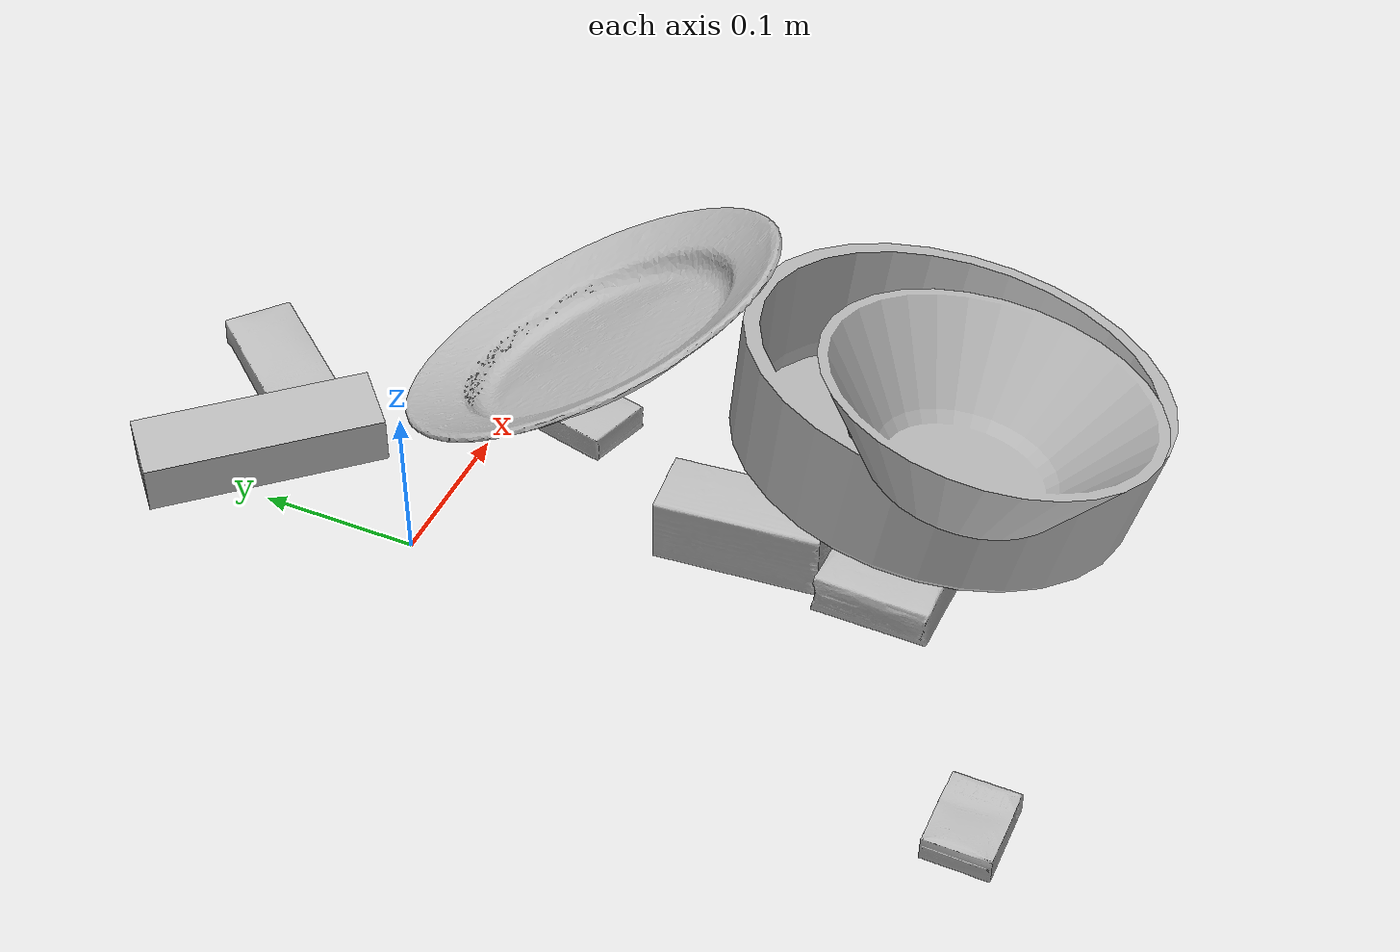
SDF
<sdf version="1.4">
  <world name="default">
    <light name="light1" type="point">
      <pose>0 0 1 0 0 0</pose>
      <diffuse>3 3 3 1</diffuse>
      <specular>3 3 3 1</specular>
    </light>
    <light name="light2" type="point">
      <pose>0 0.5 2 0 0 0</pose>
      <diffuse>1 1 1 1</diffuse>
      <specular>1 1 1 1</specular>
    </light>
    <light name="light3" type="point">
      <pose>0 0.5 2 0 0 0</pose>
      <diffuse>3 3 3 1</diffuse>
      <specular>3 3 3 1</specular>
    </light>
    <scene>
      <ambient>0.7 0.7 0.7</ambient>
    </scene>
    <model name="box1">
      <link name="link_box1">
        <collision name="default">
          <geometry>
            <mesh>
              <uri>model://jenga/collision_meshes/collision.obj</uri>
              <scale>1.0 1.0 1.0</scale>
            </mesh>
          </geometry>
          <surface>
            <friction>
              <ode>
                <mu>0.5</mu>
                <mu2>0.5</mu2>
              </ode>
            </friction>
          <contact>
        <ode>
            <max_vel>0</max_vel>
            <min_depth>0.0001</min_depth>
            <kp>1e8</kp>
        </ode>
    </contact></surface>
        </collision>
        <visual name="default">
          <geometry>
            <mesh>
              <uri>model://jenga/visual_meshes/visual.dae</uri>
              <scale>1.0 1.0 1.0</scale>
            </mesh>
          </geometry>
        </visual>
        <inertial>
          <mass>0.22956150770187378</mass>
          <pose>-2.502855807051674e-07 -0.00010250010382151231 -4.0923401684267446e-05 0.0 -7.34215461761844e-07 0.0</pose>
          <inertia>
            <ixx>6.3525236e-05</ixx>
            <iyy>0.00043044525</iyy>
            <izz>0.0004595369</izz>
            <ixy>0</ixy>
            <ixz>0</ixz>
            <iyz>0</iyz>
          </inertia>
        </inertial>
      </link>
      <pose>0.03079473413527012 0.1227559745311737 0.014999999664723873 7.823131255141175e-09 -1.5026804271638006e-09 -0.8311988964537628</pose>
    </model>
    <model name="box11">
      <link name="link_box11">
        <collision name="default">
          <geometry>
            <mesh>
              <uri>model://gelatin_box/collision_meshes/collision.obj</uri>
              <scale>1.0 1.0 1.0</scale>
            </mesh>
          </geometry>
          <surface>
            <friction>
              <ode>
                <mu>0.5</mu>
                <mu2>0.5</mu2>
              </ode>
            </friction>
          <contact>
        <ode>
            <max_vel>0</max_vel>
            <min_depth>0.0001</min_depth>
            <kp>1e8</kp>
        </ode>
    </contact></surface>
        </collision>
        <visual name="default">
          <geometry>
            <mesh>
              <uri>model://gelatin_box/visual_meshes/visual.dae</uri>
              <scale>1.0 1.0 1.0</scale>
            </mesh>
          </geometry>
        </visual>
        <inertial>
          <mass>0.23979201912879944</mass>
          <pose>0.00043196187471039593 0.00011156872642459348 -0.0003640321083366871 -0.0010503717361155602 -0.00475581776093882 0.016440559470502904</pose>
          <inertia>
            <ixx>0.00016927361</ixx>
            <iyy>0.000120911245</iyy>
            <izz>0.00025767216</izz>
            <ixy>0</ixy>
            <ixz>0</ixz>
            <iyz>0</iyz>
          </inertia>
        </inertial>
      </link>
      <pose>0.08847519010305405 -0.2768653929233551 0.015446703881025314 -0.00683122417573975 0.013645521010798006 -1.6049423554447446</pose>
    </model>
    <model name="box2">
      <link name="link_box2">
        <collision name="default">
          <geometry>
            <mesh>
              <uri>model://wood_block/collision_meshes/collision.obj</uri>
              <scale>0.5 0.5 0.5</scale>
            </mesh>
          </geometry>
          <surface>
            <friction>
              <ode>
                <mu>0.5</mu>
                <mu2>0.5</mu2>
              </ode>
            </friction>
          <contact>
        <ode>
            <max_vel>0</max_vel>
            <min_depth>0.0001</min_depth>
            <kp>1e8</kp>
        </ode>
    </contact></surface>
        </collision>
        <visual name="default">
          <geometry>
            <mesh>
              <uri>model://wood_block/visual_meshes/visual.dae</uri>
              <scale>0.5 0.5 0.5</scale>
            </mesh>
          </geometry>
        </visual>
        <inertial>
          <mass>0.1620619148015976</mass>
          <pose>-2.9066577553749084e-06 -0.000285404734313488 0.00013204291462898254 -0.05221116986778199 -0.0051926948812571205 -0.006861377876233232</pose>
          <inertia>
            <ixx>5.421584e-05</ixx>
            <iyy>0.00017126785</iyy>
            <izz>0.00017062723</izz>
            <ixy>0</ixy>
            <ixz>0</ixz>
            <iyz>0</iyz>
          </inertia>
        </inertial>
      </link>
      <pose>0.07628384977579117 -0.18608565628528595 0.02261963114142418 -0.0061968513099358346 0.00513408023708013 -1.4786647289021089</pose>
    </model>
    <model name="box21">
      <link name="link_box21">
        <collision name="default">
          <geometry>
            <mesh>
              <uri>model://cracker_box/collision_meshes/collision.obj</uri>
              <scale>0.25 0.25 0.25</scale>
            </mesh>
          </geometry>
          <surface>
            <friction>
              <ode>
                <mu>0.5</mu>
                <mu2>0.5</mu2>
              </ode>
            </friction>
          <contact>
        <ode>
            <max_vel>0</max_vel>
            <min_depth>0.0001</min_depth>
            <kp>1e8</kp>
        </ode>
    </contact></surface>
        </collision>
        <visual name="default">
          <geometry>
            <mesh>
              <uri>model://cracker_box/visual_meshes/visual.dae</uri>
              <scale>0.25 0.25 0.25</scale>
            </mesh>
          </geometry>
        </visual>
        <inertial>
          <mass>0.053346797823905945</mass>
          <pose>0.0002366035187151283 6.358561950037256e-05 -0.00042573839891701937 -0.0003162075101960104 -0.011106487737771283 0.002546795233856971</pose>
          <inertia>
            <ixx>8.4806525e-06</ixx>
            <iyy>1.40032225e-05</iyy>
            <izz>1.9983887e-05</izz>
            <ixy>0</ixy>
            <ixz>0</ixz>
            <iyz>0</iyz>
          </inertia>
        </inertial>
      </link>
      <pose>-0.07306446880102158 -0.37954655289649963 0.009096027351915836 -0.014050559850997813 -0.00501664735089754 -3.141457781841133</pose>
    </model>
    <model name="box3">
      <link name="link_box3">
        <collision name="default">
          <geometry>
            <mesh>
              <uri>model://pudding_box/collision_meshes/collision.obj</uri>
              <scale>0.5 0.5 0.5</scale>
            </mesh>
          </geometry>
          <surface>
            <friction>
              <ode>
                <mu>0.5</mu>
                <mu2>0.5</mu2>
              </ode>
            </friction>
          <contact>
        <ode>
            <max_vel>0</max_vel>
            <min_depth>0.0001</min_depth>
            <kp>1e8</kp>
        </ode>
    </contact></surface>
        </collision>
        <visual name="default">
          <geometry>
            <mesh>
              <uri>model://pudding_box/visual_meshes/visual.dae</uri>
              <scale>0.5 0.5 0.5</scale>
            </mesh>
          </geometry>
        </visual>
        <inertial>
          <mass>0.03981568291783333</mass>
          <pose>0.00024474109522998333 0.00040339428232982755 -0.00025944141088984907 0.005213101343760943 -0.0066037982384193495 0.020079821436446477</pose>
          <inertia>
            <ixx>1.1252395e-05</ixx>
            <iyy>7.5706907e-06</iyy>
            <izz>1.6617103e-05</izz>
            <ixy>0</ixy>
            <ixz>0</ixz>
            <iyz>0</iyz>
          </inertia>
        </inertial>
      </link>
      <pose>0.13933169841766357 -0.05107272416353226 0.00986290443688631 0.0223489041248128 -0.01139140947796795 2.8585126117008386</pose>
    </model>
    <model name="box31">
      <link name="link_box31">
        <collision name="default">
          <geometry>
            <mesh>
              <uri>model://sugar_box/collision_meshes/collision.obj</uri>
              <scale>0.5 0.5 0.5</scale>
            </mesh>
          </geometry>
          <surface>
            <friction>
              <ode>
                <mu>0.5</mu>
                <mu2>0.5</mu2>
              </ode>
            </friction>
          <contact>
        <ode>
            <max_vel>0</max_vel>
            <min_depth>0.0001</min_depth>
            <kp>1e8</kp>
        </ode>
    </contact></surface>
        </collision>
        <visual name="default">
          <geometry>
            <mesh>
              <uri>model://sugar_box/visual_meshes/visual.dae</uri>
              <scale>0.5 0.5 0.5</scale>
            </mesh>
          </geometry>
        </visual>
        <inertial>
          <mass>0.09878891706466675</mass>
          <pose>0.0005171863595023751 1.924554817378521e-05 -0.00018182402709499002 -0.0004046259508743568 0.001050663638168667 0.0026153790219137513</pose>
          <inertia>
            <ixx>2.0577656e-05</ixx>
            <iyy>6.651122e-05</iyy>
            <izz>7.9621874e-05</izz>
            <ixy>0</ixy>
            <ixz>0</ixz>
            <iyz>0</iyz>
          </inertia>
        </inertial>
      </link>
      <pose>0.10499000549316406 0.1519729644060135 0.011399303562939167 0.0007753173764544032 -0.02343325145340243 0.8815105750105666</pose>
    </model>
    <model name="plate1">
      <link name="link_plate1">
        <collision name="default">
          <geometry>
            <mesh>
              <uri>model://pan_tefal/collision_meshes/collision.obj</uri>
              <scale>1.0 1.0 1.0</scale>
            </mesh>
          </geometry>
          <surface>
            <friction>
              <ode>
                <mu>0.5</mu>
                <mu2>0.5</mu2>
              </ode>
            </friction>
          <contact>
        <ode>
            <max_vel>0</max_vel>
            <min_depth>0.0001</min_depth>
            <kp>1e8</kp>
        </ode>
    </contact></surface>
        </collision>
        <visual name="default">
          <geometry>
            <mesh>
              <uri>model://pan_tefal/visual_meshes/visual.dae</uri>
              <scale>1.0 1.0 1.0</scale>
            </mesh>
          </geometry>
        </visual>
        <inertial>
          <mass>1.1273940801620483</mass>
          <pose>-0.00018001534044742584 3.279306838521734e-05 -0.00851493701338768 0.0008190361817388816 -0.00033014848142065665 -0.3318599615030245</pose>
          <inertia>
            <ixx>0.007782347</ixx>
            <iyy>0.00783252</iyy>
            <izz>0.014325799</izz>
            <ixy>0</ixy>
            <ixz>0</ixz>
            <iyz>0</iyz>
          </inertia>
        </inertial>
      </link>
      <pose>0.17310737073421478 -0.27326059341430664 0.06422870606184006 -0.1506782256725437 -0.1863244572089894 -3.080524853049067</pose>
    </model>
    <model name="bowl1">
      <link name="link_bowl1">
        <collision name="default">
          <geometry>
            <mesh>
              <uri>model://bowl_a/collision_meshes/collision.obj</uri>
              <scale>1.0 1.0 1.0</scale>
            </mesh>
          </geometry>
          <surface>
            <friction>
              <ode>
                <mu>0.5</mu>
                <mu2>0.5</mu2>
              </ode>
            </friction>
          <contact>
        <ode>
            <max_vel>0</max_vel>
            <min_depth>0.0001</min_depth>
            <kp>1e8</kp>
        </ode>
    </contact></surface>
        </collision>
        <visual name="default">
          <geometry>
            <mesh>
              <uri>model://bowl_a/visual_meshes/visual.dae</uri>
              <scale>1.0 1.0 1.0</scale>
            </mesh>
          </geometry>
        </visual>
        <inertial>
          <mass>0.3873887062072754</mass>
          <pose>0.00027867493918165565 4.731054286821745e-05 -0.0013765293406322598 -0.0009805472575270138 -0.0010938146264646796 -0.19122952428204854</pose>
          <inertia>
            <ixx>0.0011029133</ixx>
            <iyy>0.0011096848</iyy>
            <izz>0.001961574</izz>
            <ixy>0</ixy>
            <ixz>0</ixz>
            <iyz>0</iyz>
          </inertia>
        </inertial>
      </link>
      <pose>0.07493455708026886 -0.32108089327812195 0.14700399339199066 -0.10652238120416692 -0.21464483476907478 2.982779829681363</pose>
    </model>
    <model name="plate2">
      <link name="link_plate2">
        <collision name="default">
          <geometry>
            <mesh>
              <uri>model://plate/collision_meshes/collision.obj</uri>
              <scale>1.0 1.0 1.0</scale>
            </mesh>
          </geometry>
          <surface>
            <friction>
              <ode>
                <mu>0.5</mu>
                <mu2>0.5</mu2>
              </ode>
            </friction>
          <contact>
        <ode>
            <max_vel>0</max_vel>
            <min_depth>0.0001</min_depth>
            <kp>1e8</kp>
        </ode>
    </contact></surface>
        </collision>
        <visual name="default">
          <geometry>
            <mesh>
              <uri>model://plate/visual_meshes/visual.dae</uri>
              <scale>1.0 1.0 1.0</scale>
            </mesh>
          </geometry>
        </visual>
        <inertial>
          <mass>0.13866961002349854</mass>
          <pose>-0.0006044620531611145 0.0002782586379908025 -0.0010561972158029675 0.0022187857877866432 -0.0032254843385796767 0.452609315183835</pose>
          <inertia>
            <ixx>0.0006486992</ixx>
            <iyy>0.0006424946</iyy>
            <izz>0.0012687586</izz>
            <ixy>0</ixy>
            <ixz>0</ixz>
            <iyz>0</iyz>
          </inertia>
        </inertial>
      </link>
      <pose>0.16428415477275848 -0.04738190025091171 0.057278916239738464 -0.5164176197182172 0.023174000927621213 -0.07266397631216381</pose>
    </model>
    <model name="bowl2">
      <link name="link_bowl2">
        <collision name="default">
          <geometry>
            <mesh>
              <uri>model://bowl/collision_meshes/collision.obj</uri>
              <scale>1.0 1.0 1.0</scale>
            </mesh>
          </geometry>
          <surface>
            <friction>
              <ode>
                <mu>0.5</mu>
                <mu2>0.5</mu2>
              </ode>
            </friction>
          <contact>
        <ode>
            <max_vel>0</max_vel>
            <min_depth>0.0001</min_depth>
            <kp>1e8</kp>
        </ode>
    </contact></surface>
        </collision>
        <visual name="default">
          <geometry>
            <mesh>
              <uri>model://bowl/visual_meshes/visual.dae</uri>
              <scale>1.0 1.0 1.0</scale>
            </mesh>
          </geometry>
        </visual>
        <inertial>
          <mass>0.04854629561305046</mass>
          <pose>0.00020445325935725123 -0.0010302069131284952 -0.0008042645058594644 -0.015764106240563104 0.014546770392749554 0.7140394241749954</pose>
          <inertia>
            <ixx>0.00011151466</ixx>
            <iyy>0.00010902299</iyy>
            <izz>0.00018760598</izz>
            <ixy>0</ixy>
            <ixz>0</ixz>
            <iyz>0</iyz>
          </inertia>
        </inertial>
      </link>
      <pose>0.1505703181028366 -0.28908276557922363 0.06381136924028397 0.22095005029278966 -0.09559291025100683 1.3380260937819963</pose>
    </model>
  <physics type="ode">
      <max_contacts>50</max_contacts>
      <ode>
        <solver>
          <type>quick</type>
          <iters>75</iters>
        </solver>
        <constraints>
          <contact_max_correcting_vel>0</contact_max_correcting_vel>
          <contact_surface_layer>0</contact_surface_layer>
        </constraints>
      </ode>
    </physics></world>
</sdf>
